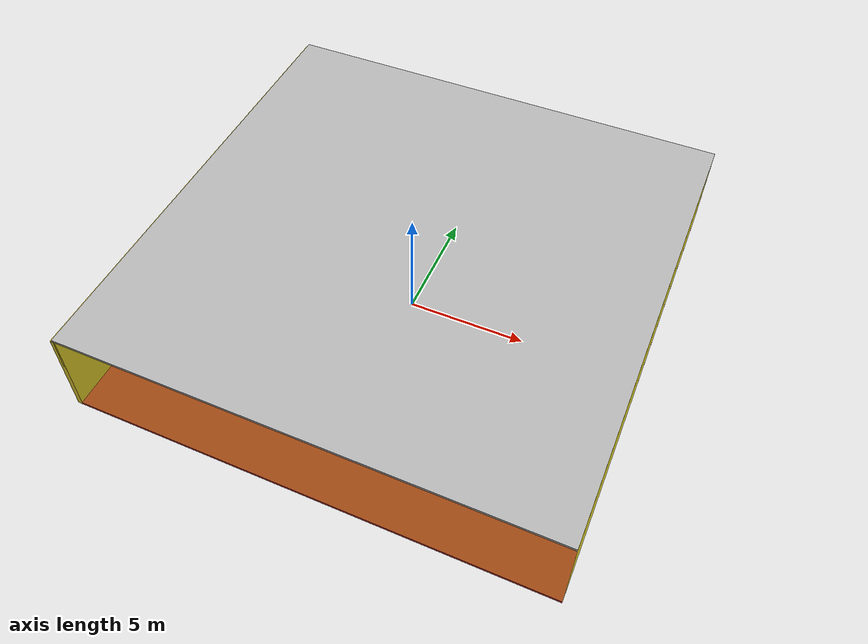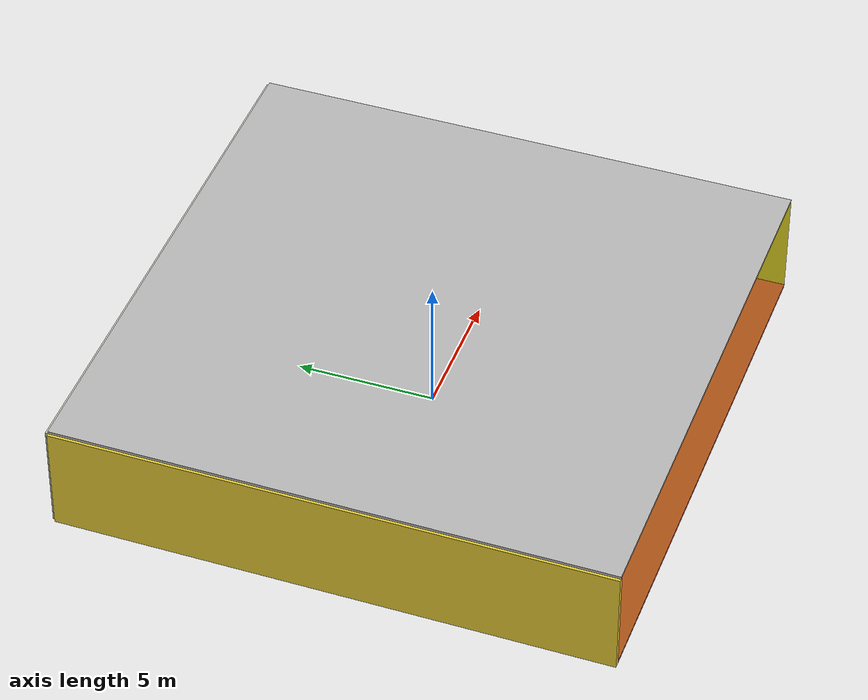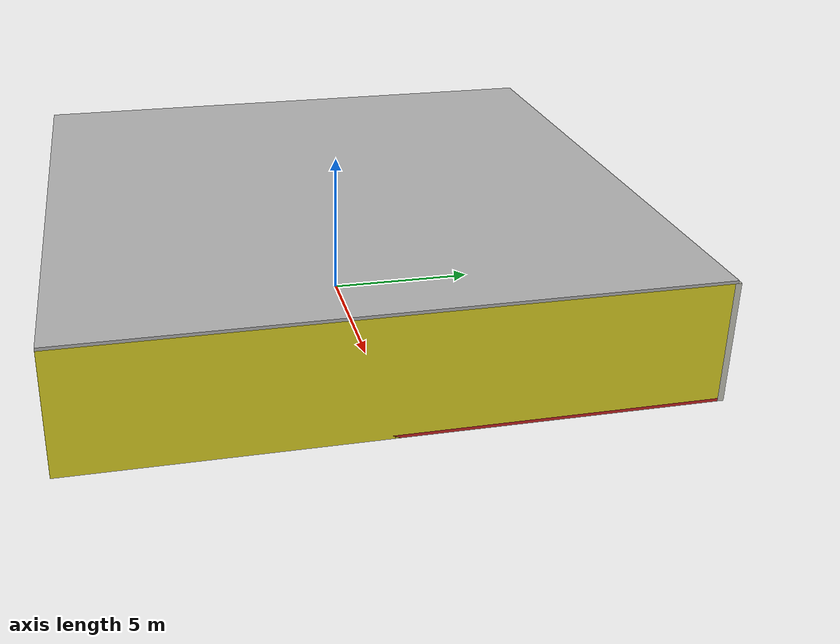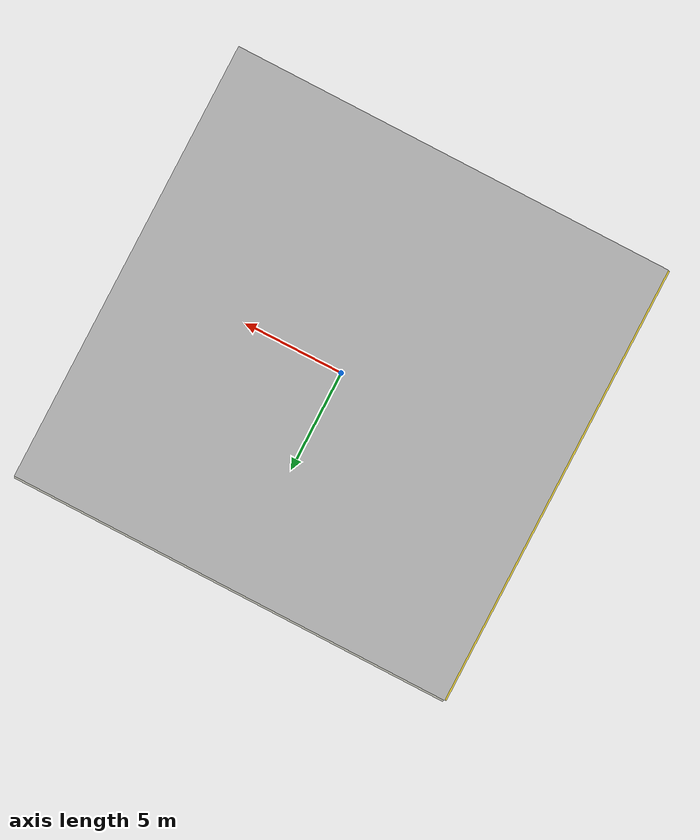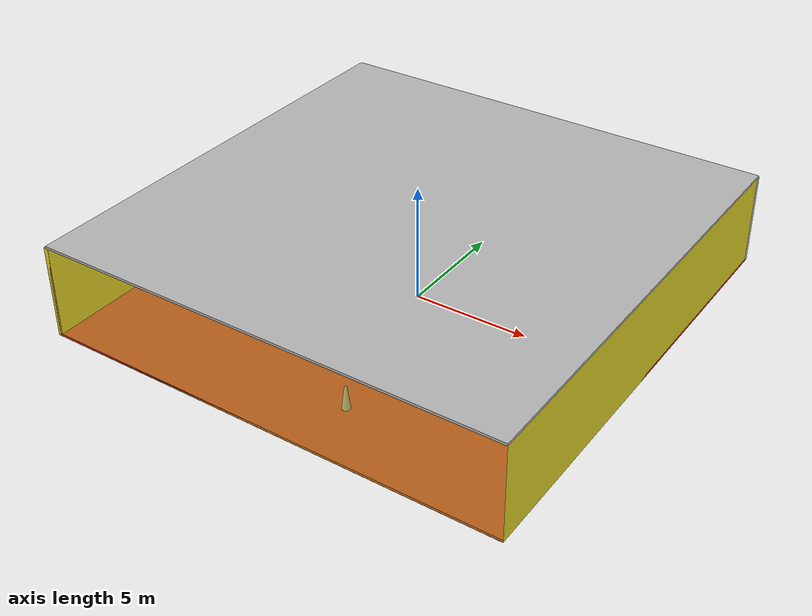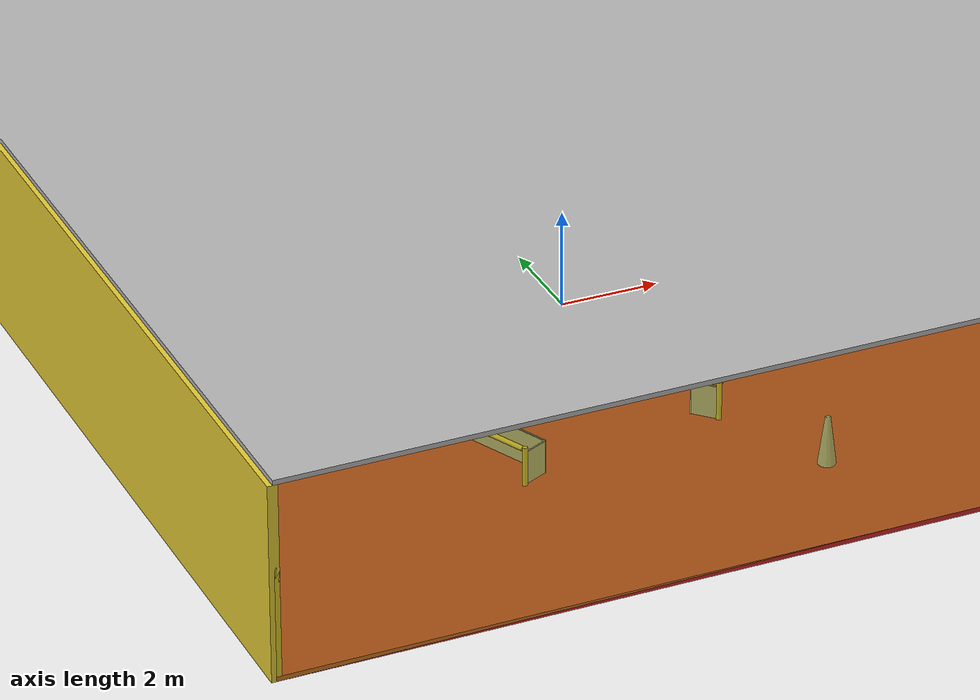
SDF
<sdf version="1.4">
 <world name="default">
  <physics type="ode">
   <max_step_size>0.001</max_step_size>
   <real_time_factor>1</real_time_factor>
   <real_time_update_rate>1000</real_time_update_rate>
   <gravity>0 0 -9.8</gravity>
  </physics>
  <scene><ambient>0.4 0.4 0.4 1</ambient><background>0.7 0.7 0.7 1</background><shadows>1</shadows></scene>
  <model name="Surrounding">
   <static>1</static>
   <link name="Ceiling">
    <collision name="Ceiling_Collision"><geometry><box><size>20 20 0.1</size></box></geometry></collision>
    <visual name="Ceiling_Visual">
     <geometry><box><size>20 20 0.1</size></box></geometry>
     <material>
      <script><uri>file://media/materials/scripts/gazebo.material</uri><name>Gazebo/LightOff</name></script>
     </material>
    </visual>
    <pose>0 0 4.05 0 0 0</pose>
   </link>
   <link name="Wall_South">
    <collision name="Wall_South_Collision">
     <geometry><box><size>20 0 4</size></box></geometry>
     <pose>0 0 2 0 -0 0</pose>
    </collision>
    <visual name="Wall_South_Visual">
     <pose>0 0 2 0 -0 0</pose>
     <geometry><box><size>20 0 4</size></box></geometry>
     <material>
      <script>
       <uri>file://media/materials/scripts/gazebo.material</uri>
       <name>Gazebo/YellowTransparent</name>
      </script>
     </material>
    </visual>
    <velocity_decay><linear>0</linear><angular>0</angular></velocity_decay>
    <pose>0 -10 0 0 -0 0</pose>
   </link>
   <link name="Wall_East">
    <collision name="Wall_21_Collision">
     <geometry><box><size>20 0 4</size></box></geometry>
     <pose>0 0 2 0 -0 0</pose>
    </collision>
    <visual name="Wall_21_Visual">
     <pose>0 0 2 0 -0 0</pose>
     <geometry><box><size>20 0 4</size></box></geometry>
     <material>
      <script><uri>file://media/materials/scripts/gazebo.material</uri><name>Gazebo/YellowGlow</name></script>
     </material>
    </visual>
    <velocity_decay><linear>0</linear><angular>0</angular></velocity_decay>
    <pose>10 0 0 0 -0 1.5708</pose>
   </link>
   <link name="Wall_North">
    <collision name="Wall_22_Collision">
     <geometry><box><size>20 0.2 4</size></box></geometry>
     <pose>0 0 2 0 -0 0</pose>
    </collision>
    <visual name="Wall_22_Visual">
     <pose>0 0 2 0 -0 0</pose>
     <geometry><box><size>20 0.2 4</size></box></geometry>
     <material>
      <script><uri>file://media/materials/scripts/gazebo.material</uri><name>Gazebo/PaintedWall</name></script>
     </material>
    </visual>
    <velocity_decay><linear>0</linear><angular>0</angular></velocity_decay>
    <pose>0 10 0 0 -0 0</pose>
   </link>
   <link name="Wall_West">
    <collision name="Wall_23_Collision">
     <geometry><box><size>20 0.2 4</size></box></geometry>
     <pose>0 0 2 0 -0 0</pose>
    </collision>
    <visual name="Wall_23_Visual">
     <pose>0 0 2 0 -0 0</pose>
     <geometry><box><size>20 0.2 4</size></box></geometry>
     <material>
      <script><uri>file://media/materials/scripts/gazebo.material</uri><name>Gazebo/ZincYellow</name></script>
     </material>
    </visual>
    <velocity_decay><linear>0</linear><angular>0</angular></velocity_decay>
    <pose>-10 0 0 0 0 -1.5708</pose>
   </link>
   <link name="Ground_link">
    <collision name="collision">
     <pose>0 0 .05 0 -0 0</pose>
     <geometry><box><size>20 20 0.1</size></box></geometry>
    </collision>
    <visual name="visual">
     <pose>0 0 .05 0 -0 0</pose>
     <geometry><box><size>20 20 0.1</size></box></geometry>
     <material>
      <script><uri>file://media/materials/scripts/gazebo.material</uri><name>Gazebo/RedBright</name></script>
     </material>
    </visual>
   </link>
   <static>1</static>
  </model>
  <spherical_coordinates>
   <surface_model>EARTH_WGS84</surface_model>
   <latitude_deg>0</latitude_deg>
   <longitude_deg>0</longitude_deg>
   <elevation>0</elevation>
   <heading_deg>0</heading_deg>
  </spherical_coordinates>
  <light name="lightball_0" type="diffuse">
   <diffuse>0.8 0.8 0.8 1</diffuse>
   <specular>0.2 0.2 0.2 1</specular>
   <attenuation>
    <range>100</range>
    <constant>0.7</constant>
    <linear>0.01</linear>
    <quadratic>0.001</quadratic>
   </attenuation>
   <direction>-0.5 0.1 -0.9</direction>
   <pose>2.63266363415 6.61484668965 3.01119053781 0 0 0</pose>
  </light>
  <light name="lightball_1" type="diffuse">
   <diffuse>0.8 0.8 0.8 1</diffuse>
   <specular>0.2 0.2 0.2 1</specular>
   <attenuation>
    <range>100</range>
    <constant>0.7</constant>
    <linear>0.01</linear>
    <quadratic>0.001</quadratic>
   </attenuation>
   <direction>-0.5 0.1 -0.9</direction>
   <pose>6.38937945226 -5.59665804273 3.03116310152 0 0 0</pose>
  </light>
  <light name="lightball_2" type="diffuse">
   <diffuse>0.8 0.8 0.8 1</diffuse>
   <specular>0.2 0.2 0.2 1</specular>
   <attenuation>
    <range>100</range>
    <constant>0.7</constant>
    <linear>0.01</linear>
    <quadratic>0.001</quadratic>
   </attenuation>
   <direction>-0.5 0.1 -0.9</direction>
   <pose>4.20689553039 6.54145065004 1.52510157643 0 0 0</pose>
  </light>
  <light name="lightball_3" type="diffuse">
   <diffuse>0.8 0.8 0.8 1</diffuse>
   <specular>0.2 0.2 0.2 1</specular>
   <attenuation>
    <range>100</range>
    <constant>0.7</constant>
    <linear>0.01</linear>
    <quadratic>0.001</quadratic>
   </attenuation>
   <direction>-0.5 0.1 -0.9</direction>
   <pose>2.87987126039 7.44938666801 2.69711952338 0 0 0</pose>
  </light>
  <light name="lightball_4" type="diffuse">
   <diffuse>0.8 0.8 0.8 1</diffuse>
   <specular>0.2 0.2 0.2 1</specular>
   <attenuation>
    <range>100</range>
    <constant>0.7</constant>
    <linear>0.01</linear>
    <quadratic>0.001</quadratic>
   </attenuation>
   <direction>-0.5 0.1 -0.9</direction>
   <pose>-3.27270303118 -1.85817509647 2.10125257975 0 0 0</pose>
  </light>
  <light name="lightball_5" type="diffuse">
   <diffuse>0.8 0.8 0.8 1</diffuse>
   <specular>0.2 0.2 0.2 1</specular>
   <attenuation>
    <range>100</range>
    <constant>0.7</constant>
    <linear>0.01</linear>
    <quadratic>0.001</quadratic>
   </attenuation>
   <direction>-0.5 0.1 -0.9</direction>
   <pose>2.94352231019 2.65802655838 3.75856201384 0 0 0</pose>
  </light>
  <light name="lightball_6" type="diffuse">
   <diffuse>0.8 0.8 0.8 1</diffuse>
   <specular>0.2 0.2 0.2 1</specular>
   <attenuation>
    <range>100</range>
    <constant>0.7</constant>
    <linear>0.01</linear>
    <quadratic>0.001</quadratic>
   </attenuation>
   <direction>-0.5 0.1 -0.9</direction>
   <pose>-2.79037615147 -5.49152104139 1.8013248285 0 0 0</pose>
  </light>
  <light name="lightball_7" type="diffuse">
   <diffuse>0.8 0.8 0.8 1</diffuse>
   <specular>0.2 0.2 0.2 1</specular>
   <attenuation>
    <range>100</range>
    <constant>0.7</constant>
    <linear>0.01</linear>
    <quadratic>0.001</quadratic>
   </attenuation>
   <direction>-0.5 0.1 -0.9</direction>
   <pose>-7.27860034607 5.57584234919 0.960855197537 0 0 0</pose>
  </light>
  <include>
   <uri>model://robocup_3Dsim_goal</uri>
   <pose>-3.87657063222 -4.96495350705 0 0 0 0.431242124782</pose>
  </include>
  <include><uri>model://cabinet</uri><pose>-2.25325568465 4.45151739824 0 0 0 1.00122641142</pose></include>
  <include>
   <uri>model://construction_cone</uri>
   <pose>1.93835370645 -7.47649562242 0 0 0 2.64857156361</pose>
  </include>
  <include>
   <uri>model://robocup_3Dsim_goal</uri>
   <pose>1.55629085661 -4.5086233832 0 0 0 2.35191065712</pose>
  </include>
  <include>
   <uri>model://construction_cone</uri>
   <pose>2.24808905521 3.8693056543 0 0 0 0.942641444172</pose>
  </include>
 </world>
</sdf>

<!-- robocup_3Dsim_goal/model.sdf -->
<sdf version="1.5">
  <model name="robocup_3d_goal">
    <static>true</static>
    <link name="left_post">
      <pose>0 1.05 0.45 0 0 0</pose>
      <collision name="collision">
        <geometry>
          <cylinder>
            <radius>0.05</radius>
            <length>0.9</length>
          </cylinder>
        </geometry>
      </collision>
      <visual name="visual">
        <geometry>
          <cylinder>
            <radius>0.05</radius>
            <length>0.9</length>
          </cylinder>
        </geometry>
        <material>
          <script>
            <uri>file://media/materials/scripts/gazebo.material</uri>
            <name>Gazebo/ZincYellow</name>
          </script>
        </material>
      </visual>
    </link>
    <link name="left_support_horiz_lower">
      <pose>0.30 1.05 0.01 0 0 0</pose>
      <collision name="collision">
        <geometry>
          <box>
            <size>0.50 0.02 0.02</size>
          </box>
        </geometry>
      </collision>
      <visual name="visual">
        <geometry>
          <box>
            <size>0.50 0.02 0.02</size>
          </box>
        </geometry>
        <material>
          <script>
            <uri>file://media/materials/scripts/gazebo.material</uri>
            <name>Gazebo/White</name>
          </script>
        </material>
      </visual>
    </link>
    <link name="left_support_horiz_upper">
      <pose>0.30 1.05 0.79 0 0 0</pose>
      <collision name="collision">
        <geometry>
          <box>
            <size>0.50 0.02 0.02</size>
          </box>
        </geometry>
      </collision>
      <visual name="visual">
        <geometry>
          <box>
            <size>0.50 0.02 0.02</size>
          </box>
        </geometry>
        <material>
          <script>
            <uri>file://media/materials/scripts/gazebo.material</uri>
            <name>Gazebo/White</name>
          </script>
        </material>
      </visual>
    </link>
    <link name="left_support_vertical">
      <pose>0.56 1.05 0.4 0 1.5708 0</pose>
      <collision name="collision">
        <geometry>
          <box>
            <size>0.80 0.02 0.02</size>
          </box>
        </geometry>
      </collision>
      <visual name="visual">
        <geometry>
          <box>
            <size>0.80 0.02 0.02</size>
          </box>
        </geometry>
        <material>
          <script>
            <uri>file://media/materials/scripts/gazebo.material</uri>
            <name>Gazebo/White</name>
          </script>
        </material>
      </visual>
    </link>
    <link name="right_support_horiz_lower">
      <pose>0.30 -1.05 0.01 0 0 0</pose>
      <collision name="collision">
        <geometry>
          <box>
            <size>0.50 0.02 0.02</size>
          </box>
        </geometry>
      </collision>
      <visual name="visual">
        <geometry>
          <box>
            <size>0.50 0.02 0.02</size>
          </box>
        </geometry>
        <material>
          <script>
            <uri>file://media/materials/scripts/gazebo.material</uri>
            <name>Gazebo/White</name>
          </script>
        </material>
      </visual>
    </link>
    <link name="right_support_horiz_upper">
      <pose>0.30 -1.05 0.79 0 0 0</pose>
      <collision name="collision">
        <geometry>
          <box>
            <size>0.50 0.02 0.02</size>
          </box>
        </geometry>
      </collision>
      <visual name="visual">
        <geometry>
          <box>
            <size>0.50 0.02 0.02</size>
          </box>
        </geometry>
        <material>
          <script>
            <uri>file://media/materials/scripts/gazebo.material</uri>
            <name>Gazebo/White</name>
          </script>
        </material>
      </visual>
    </link>
    <link name="right_support_vertical">
      <pose>0.56 -1.05 0.4 0 1.5708 0</pose>
      <collision name="collision">
        <geometry>
          <box>
            <size>0.80 0.02 0.02</size>
          </box>
        </geometry>
      </collision>
      <visual name="visual">
        <geometry>
          <box>
            <size>0.80 0.02 0.02</size>
          </box>
        </geometry>
        <material>
          <script>
            <uri>file://media/materials/scripts/gazebo.material</uri>
            <name>Gazebo/White</name>
          </script>
        </material>
      </visual>
    </link>
    <link name="center_support_horiz_lower">
      <pose>0.56 0 0.01 0 1.5708 0</pose>
      <collision name="collision">
        <geometry>
          <box>
            <size>0.02 2.08 0.02</size>
          </box>
        </geometry>
      </collision>
      <visual name="visual">
        <geometry>
          <box>
            <size>0.02 2.08 0.02</size>
          </box>
        </geometry>
        <material>
          <script>
            <uri>file://media/materials/scripts/gazebo.material</uri>
            <name>Gazebo/White</name>
          </script>
        </material>
      </visual>
    </link>
    <link name="center_support_horiz_upper">
      <pose>0.56 0 0.79 0 1.5708 0</pose>
      <collision name="collision">
        <geometry>
          <box>
            <size>0.02 2.08 0.02</size>
          </box>
        </geometry>
      </collision>
      <visual name="visual">
        <geometry>
          <box>
            <size>0.02 2.08 0.02</size>
          </box>
        </geometry>
        <material>
          <script>
            <uri>file://media/materials/scripts/gazebo.material</uri>
            <name>Gazebo/White</name>
          </script>
        </material>
      </visual>
    </link>
    <link name="right_post">
      <pose>0 -1.05 0.45 0 0 0</pose>
      <collision name="collision">
        <geometry>
          <cylinder>
            <radius>0.05</radius>
            <length>0.9</length>
          </cylinder>
        </geometry>
      </collision>
      <visual name="visual">
        <geometry>
          <cylinder>
            <radius>0.05</radius>
            <length>0.9</length>
          </cylinder>
        </geometry>
        <material>
          <script>
            <uri>file://media/materials/scripts/gazebo.material</uri>
            <name>Gazebo/ZincYellow</name>
          </script>
        </material>
      </visual>
    </link>
    <link name="crossbar">
      <pose>0 0 0.85 1.57 1.57 0</pose>
      <collision name="collision">
        <geometry>
          <cylinder>
            <radius>0.05</radius>
            <length>2.0</length>
          </cylinder>
        </geometry>
      </collision>
      <visual name="visual">
        <geometry>
          <cylinder>
            <radius>0.05</radius>
            <length>2.0</length>
          </cylinder>
        </geometry>
        <material>
          <script>
            <uri>file://media/materials/scripts/gazebo.material</uri>
            <name>Gazebo/ZincYellow</name>
          </script>
        </material>
      </visual>
    </link>
    <link name="center_net">
      <pose>0.56 0 0.40 0 0 0</pose>
      <collision name="collision">
        <geometry>
          <box>
            <size>0.01 2.1 0.80</size>
          </box>
        </geometry>
      </collision>
      <visual name="visual">
        <geometry>
          <box>
            <size>0.01 2.1 0.80</size>
          </box>
        </geometry>
        <material>
          <script>
            <uri>model://../model_source/models/robocup09_spl_field/materials/scripts/</uri>
            <uri>model://../model_source/models/robocup09_spl_field/materials/textures/</uri>
            <name>RoboCup/Net</name>
          </script>
        </material>
      </visual>
    </link>
    <link name="left_net">
      <pose>0.30 1.05 0.40 0 0 0</pose>
      <collision name="collision">
        <geometry>
          <box>
            <size>0.50 0.01 0.76</size>
          </box>
        </geometry>
      </collision>
      <visual name="visual">
        <geometry>
          <box>
            <size>0.50 0.01 0.76</size>
          </box>
        </geometry>
        <material>
          <script>
            <uri>model://../model_source/models/robocup09_spl_field/materials/scripts/</uri>
            <uri>model://../model_source/models/robocup09_spl_field/materials/textures/</uri>
            <name>RoboCup/Net</name>
          </script>
        </material>
      </visual>
    </link>
    <link name="right_net">
      <pose>0.30 -1.05 0.40 0 0 0</pose>
      <collision name="collision">
        <geometry>
          <box>
            <size>0.50 0.01 0.76</size>
          </box>
        </geometry>
      </collision>
      <visual name="visual">
        <geometry>
          <box>
            <size>0.50 0.01 0.76</size>
          </box>
        </geometry>
        <material>
          <script>
            <uri>model://../model_source/models/robocup09_spl_field/materials/scripts/</uri>
            <uri>model://../model_source/models/robocup09_spl_field/materials/textures/</uri>
            <name>RoboCup/Net</name>
          </script>
        </material>
      </visual>
    </link>
  </model>
</sdf>

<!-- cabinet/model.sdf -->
<sdf version="1.5">
  <model name="cabinet">
    <static>true</static>
    <link name="cabinet_bottom_plate">
      <inertial>
        <pose>0 0 -1 0 0 0</pose>
        <inertia>
          <ixx>2.050000</ixx>
          <ixy>0</ixy>
          <ixz>0</ixz>
          <iyy>2.050000</iyy>
          <iyz>0</iyz>
          <izz>2.050000</izz>
        </inertia>
        <mass>25.000000</mass>
      </inertial>
      <collision name="cabinet_bottom_plate_geom">
        <pose>0 0 0.010000 0 0 0</pose>
        <geometry>
          <box>
            <size>0.450000 0.450000 0.020000</size>
          </box>
        </geometry>
      </collision>
      <visual name="cabinet_bottom_plate_geom_visual">
        <pose>0 0 0.010000 0 0 0</pose>
        <geometry>
          <box>
            <size>0.450000 0.450000 0.020000</size>
          </box>
        </geometry>
        <material>
          <script>
            <uri>model://media/materials/scripts/gazebo.material</uri>
            <name>Gazebo/Wood</name>
          </script>
        </material>
      </visual>
      <collision name="cabinet_bottom_plate_geom_cabinet_back_plate">
        <pose>0.235000 0 0.510000 0 0 0</pose>
        <geometry>
          <box>
            <size>0.020000 0.450000 1.020000</size>
          </box>
        </geometry>
      </collision>
      <visual name="cabinet_bottom_plate_geom_cabinet_back_plate_visual">
        <pose>0.235000 0 0.510000 0 0 0</pose>
        <geometry>
          <box>
            <size>0.020000 0.450000 1.020000</size>
          </box>
        </geometry>
        <material>
          <script>
            <uri>model://media/materials/scripts/gazebo.material</uri>
            <name>Gazebo/Wood</name>
          </script>
        </material>
      </visual>
      <collision name="cabinet_bottom_plate_geom_cabinet_left_plate">
        <pose>0 0.235000 0.510000 0 0 0</pose>
        <geometry>
          <box>
            <size>0.450000 0.020000 1.020000</size>
          </box>
        </geometry>
      </collision>
      <visual name="cabinet_bottom_plate_geom_cabinet_left_plate_visual">
        <pose>0 0.235000 0.510000 0 0 0</pose>
        <geometry>
          <box>
            <size>0.450000 0.020000 1.020000</size>
          </box>
        </geometry>
        <material>
          <script>
            <uri>model://media/materials/scripts/gazebo.material</uri>
            <name>Gazebo/Wood</name>
          </script>
        </material>
      </visual>
      <collision name="cabinet_bottom_plate_geom_cabinet_middle_plate">
        <pose>0 0 0.510000 0 0 0</pose>
        <geometry>
          <box>
            <size>0.450000 0.450000 0.020000</size>
          </box>
        </geometry>
      </collision>
      <visual name="cabinet_bottom_plate_geom_cabinet_middle_plate_visual">
        <pose>0 0 0.510000 0 0 0</pose>
        <geometry>
          <box>
            <size>0.450000 0.450000 0.020000</size>
          </box>
        </geometry>
        <material>
          <script>
            <uri>model://media/materials/scripts/gazebo.material</uri>
            <name>Gazebo/Wood</name>
          </script>
        </material>
      </visual>
      <collision name="cabinet_bottom_plate_geom_cabinet_right_plate">
        <pose>0 -0.235000 0.510000 0 0 0</pose>
        <geometry>
          <box>
            <size>0.450000 0.020000 1.020000</size>
          </box>
        </geometry>
      </collision>
      <visual name="cabinet_bottom_plate_geom_cabinet_right_plate_visual">
        <pose>0 -0.235000 0.510000 0 0 0</pose>
        <geometry>
          <box>
            <size>0.450000 0.020000 1.020000</size>
          </box>
        </geometry>
        <material>
          <script>
            <uri>model://media/materials/scripts/gazebo.material</uri>
            <name>Gazebo/Wood</name>
          </script>
        </material>
      </visual>
      <collision name="cabinet_bottom_plate_geom_cabinet_top_plate">
        <pose>0 0 1.010000 0 0 0</pose>
        <geometry>
          <box>
            <size>0.450000 0.450000 0.020000</size>
          </box>
        </geometry>
      </collision>
      <visual name="cabinet_bottom_plate_geom_cabinet_top_plate_visual">
        <pose>0 0 1.010000 0 0 0</pose>
        <geometry>
          <box>
            <size>0.450000 0.450000 0.020000</size>
          </box>
        </geometry>
        <material>
          <script>
            <uri>model://media/materials/scripts/gazebo.material</uri>
            <name>Gazebo/Wood</name>
          </script>
        </material>
      </visual>
    </link>
  </model>
</sdf>

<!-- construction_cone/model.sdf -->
<sdf version="1.5">
  <model name="Construction Cone">
    <link name="link">
      <collision name="collision">
        <geometry>
          <mesh>
            <scale>10 10 10</scale>
            <uri>file://isr-testbed/construction_cone/meshes/construction_cone.dae</uri>
          </mesh>
        </geometry>
      </collision>
      <visual name="visual">
        <geometry>
          <mesh>
            <scale>10 10 10</scale>
            <uri>file://isr-testbed/construction_cone/meshes/construction_cone.dae</uri>
          </mesh>
        </geometry>
      </visual>
    </link>
  </model>
</sdf>
